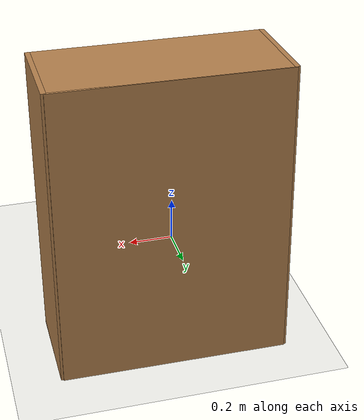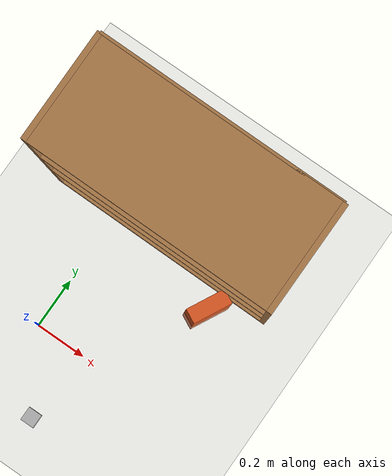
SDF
<sdf version="1.7">
 <world name="default">
  <plugin name="ros_link_attacher_plugin" filename="libgazebo_ros_link_attacher.so"/>
  <physics type="ode">
   <max_step_size>0.001</max_step_size>
   <real_time_factor>1</real_time_factor>
   <real_time_update_rate>1000</real_time_update_rate>
  </physics>
  <gravity>0 0 -9.8</gravity>
  <light name="sun" type="directional">
   <pose>0 0 10 0 -0 0</pose>
   <diffuse>0.8 0.8 0.8 1</diffuse>
   <specular>0.2 0.2 0.2 1</specular>
   <attenuation>
    <range>1000</range>
    <constant>0.9</constant>
    <linear>0.01</linear>
    <quadratic>0.001</quadratic>
   </attenuation>
   <direction>-0.5 0.1 -0.9</direction>
   <spot><inner_angle>0</inner_angle><outer_angle>0</outer_angle><falloff>0</falloff></spot>
  </light>
  <model name="ground_plane">
   <static>1</static>
   <link name="link">
    <collision name="collision">
     <geometry><plane><normal>0 0 1</normal><size>100 100</size></plane></geometry>
     <surface><friction><ode><mu>100</mu><mu2>50</mu2></ode></friction></surface>
    </collision>
    <visual name="visual">
     <cast_shadows>0</cast_shadows>
     <geometry><plane><normal>0 0 1</normal><size>100 100</size></plane></geometry>
     <material>
      <script><uri>file://media/materials/scripts/gazebo.material</uri><name>Gazebo/Grey</name></script>
     </material>
    </visual>
   </link>
  </model>
  <model name="Bookshelf">
   <static>1</static>
   <pose>0.215519 0.871391 0.005941 0.049521 0.00031 -0.00705</pose>
   <link name="link">
    <inertial><mass>1</mass></inertial>
    <collision name="back">
     <pose>0 0.005 0.6 0 -0 0</pose>
     <geometry><box><size>0.9 0.01 1.2</size></box></geometry>
    </collision>
    <visual name="visual1">
     <pose>0 0.005 0.6 0 -0 0</pose>
     <geometry><box><size>0.9 0.01 1.2</size></box></geometry>
     <material>
      <script><uri>file://media/materials/scripts/gazebo.material</uri><name>Gazebo/Wood</name></script>
     </material>
    </visual>
    <collision name="left_side">
     <pose>0.45 -0.195 0.6 0 -0 0</pose>
     <geometry><box><size>0.02 0.4 1.2</size></box></geometry>
    </collision>
    <visual name="visual2">
     <pose>0.45 -0.195 0.6 0 -0 0</pose>
     <geometry><box><size>0.02 0.4 1.2</size></box></geometry>
     <material>
      <script><uri>file://media/materials/scripts/gazebo.material</uri><name>Gazebo/Wood</name></script>
     </material>
    </visual>
    <collision name="right_side">
     <pose>-0.45 -0.195 0.6 0 -0 0</pose>
     <geometry><box><size>0.02 0.4 1.2</size></box></geometry>
    </collision>
    <visual name="visual3">
     <pose>-0.45 -0.195 0.6 0 -0 0</pose>
     <geometry><box><size>0.02 0.4 1.2</size></box></geometry>
     <material>
      <script><uri>file://media/materials/scripts/gazebo.material</uri><name>Gazebo/Wood</name></script>
     </material>
    </visual>
    <collision name="bottom">
     <pose>0 -0.195 0.03 0 -0 0</pose>
     <geometry><box><size>0.88 0.4 0.06</size></box></geometry>
    </collision>
    <visual name="visual4">
     <pose>0 -0.195 0.03 0 -0 0</pose>
     <geometry><box><size>0.88 0.4 0.06</size></box></geometry>
     <material>
      <script><uri>file://media/materials/scripts/gazebo.material</uri><name>Gazebo/Wood</name></script>
     </material>
    </visual>
    <collision name="top">
     <pose>0 -0.195 1.19 0 -0 0</pose>
     <geometry><box><size>0.88 0.4 0.02</size></box></geometry>
    </collision>
    <visual name="visual5">
     <pose>0 -0.195 1.19 0 -0 0</pose>
     <geometry><box><size>0.88 0.4 0.02</size></box></geometry>
     <material>
      <script><uri>file://media/materials/scripts/gazebo.material</uri><name>Gazebo/Wood</name></script>
     </material>
    </visual>
    <collision name="low_shelf">
     <pose>0 -0.195 0.43 0 -0 0</pose>
     <geometry><box><size>0.88 0.4 0.02</size></box></geometry>
    </collision>
    <visual name="visual6">
     <pose>0 -0.195 0.43 0 -0 0</pose>
     <geometry><box><size>0.88 0.4 0.02</size></box></geometry>
     <material>
      <script><uri>file://media/materials/scripts/gazebo.material</uri><name>Gazebo/Wood</name></script>
     </material>
    </visual>
    <collision name="high_shelf">
     <pose>0 -0.195 0.8 0 -0 0</pose>
     <geometry><box><size>0.88 0.4 0.02</size></box></geometry>
    </collision>
    <visual name="visual7">
     <pose>0 -0.195 0.8 0 -0 0</pose>
     <geometry><box><size>0.88 0.4 0.02</size></box></geometry>
     <material>
      <script><uri>file://media/materials/scripts/gazebo.material</uri><name>Gazebo/Wood</name></script>
     </material>
    </visual>
   </link>
  </model>
  <model name="depth_camera_model">
   <static>1</static>
   <pose>0.213313 -0.265378 0.532843 0 -0 1.57188</pose>
   <link name="depth_camera_link">
    <visual name="depth_camera_body"><geometry><box><size>0.05 0.05 0.03</size></box></geometry></visual>
    <sensor name="depth_camera" type="depth">
     <always_on>1</always_on>
     <update_rate>30</update_rate>
     <camera>
      <horizontal_fov>1.047</horizontal_fov>
      <image><width>640</width><height>480</height><format>R8G8B8</format></image>
      <clip><near>0.1</near><far>3</far></clip>
     </camera>
     <visualize>1</visualize>
     <plugin name="camera_controller" filename="libgazebo_ros_openni_kinect.so">
      <cameraName>depth_camera</cameraName>
      <alwaysOn>1</alwaysOn>
      <updateRate>30.0</updateRate>
      <imageTopicName>/camera/color/image_raw</imageTopicName>
      <cameraInfoTopicName>/camera/color/camera_info</cameraInfoTopicName>
      <depthImageTopicName>/camera/depth/image_raw</depthImageTopicName>
      <pointCloudTopicName>/camera/depth/points</pointCloudTopicName>
      <frameName>depth_camera_link</frameName>
     </plugin>
    </sensor>
   </link>
  </model>
  <scene><ambient>0.4 0.4 0.4 1</ambient><background>0.7 0.7 0.7 1</background><shadows>1</shadows></scene>
  <magnetic_field>6e-06 2.3e-05 -4.2e-05</magnetic_field>
  <atmosphere type="adiabatic"/>
  <spherical_coordinates>
   <surface_model>EARTH_WGS84</surface_model>
   <latitude_deg>0</latitude_deg>
   <longitude_deg>0</longitude_deg>
   <elevation>0</elevation>
   <heading_deg>0</heading_deg>
  </spherical_coordinates>
  <model name="cracker_box">
   <pose>0.471289 0.40012 0.001371 -0.000433 0.067455 1.09876</pose>
   <link name="link">
    <inertial>
     <mass>0.411</mass>
     <inertia><ixx>0.002</ixx><ixy>0</ixy><ixz>0</ixz><iyy>0.002</iyy><iyz>0</iyz><izz>0.001</izz></inertia>
    </inertial>
    <visual name="visual">
     <geometry><box><size>0.158 0.06 0.21</size></box></geometry>
     <material>
      <ambient>0.75 0.28 0.10 1</ambient>
      <diffuse>0.90 0.36 0.14 1</diffuse>
      <specular>0.05 0.05 0.05 1</specular>
     </material>
    </visual>
    <collision name="collision">
     <geometry><box><size>0.158 0.06 0.21</size></box></geometry>
     <surface><friction><ode><mu>1</mu><mu2>1</mu2></ode></friction></surface>
    </collision>
   </link>
  </model>
  <light name="user_point_light_0" type="point">
   <pose>0.042175 -0.738146 1 0 -0 0</pose>
   <diffuse>0.5 0.5 0.5 1</diffuse>
   <specular>0.1 0.1 0.1 1</specular>
   <attenuation>
    <range>20</range>
    <constant>0.5</constant>
    <linear>0.01</linear>
    <quadratic>0.001</quadratic>
   </attenuation>
   <cast_shadows>0</cast_shadows>
   <direction>0 0 -1</direction>
   <spot><inner_angle>0</inner_angle><outer_angle>0</outer_angle><falloff>0</falloff></spot>
  </light>
  <model name="beer">
   <link name="link">
    <pose>0 0 0.115 0 -0 0</pose>
    <inertial>
     <mass>0.39</mass>
     <inertia><ixx>0.00058</ixx><ixy>0</ixy><ixz>0</ixz><iyy>0.00058</iyy><iyz>0</iyz><izz>0.00019</izz></inertia>
    </inertial>
    <collision name="collision">
     <geometry><cylinder><radius>0.0550001</radius><length>0.230001</length></cylinder></geometry>
     <surface>
      <friction><ode><mu>100</mu><mu2>100</mu2><fdir1>0 0 0</fdir1><slip1>0</slip1><slip2>0</slip2></ode></friction>
      <contact><ode><kp>1e+06</kp><kd>1</kd><min_depth>0.001</min_depth><max_vel>0.1</max_vel></ode></contact>
     </surface>
    </collision>
    <visual name="visual">
     <geometry><cylinder><radius>0.0550001</radius><length>0.230001</length></cylinder></geometry>
     <material>
      <script>
       <uri>model://Beer/materials/scripts</uri>
       <uri>model://Beer/materials/textures</uri>
       <name>Beer/Diffuse</name>
      </script>
     </material>
    </visual>
   </link>
   <pose>0.050284 0.536052 0.388228 0.068726 -9.2e-05 -5.6e-05</pose>
  </model>
 </world>
</sdf>
